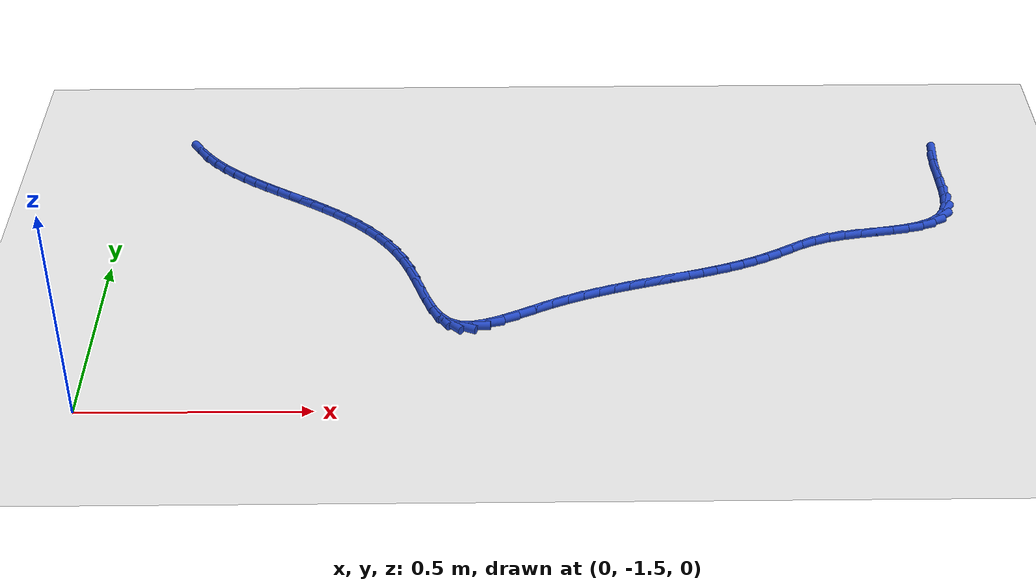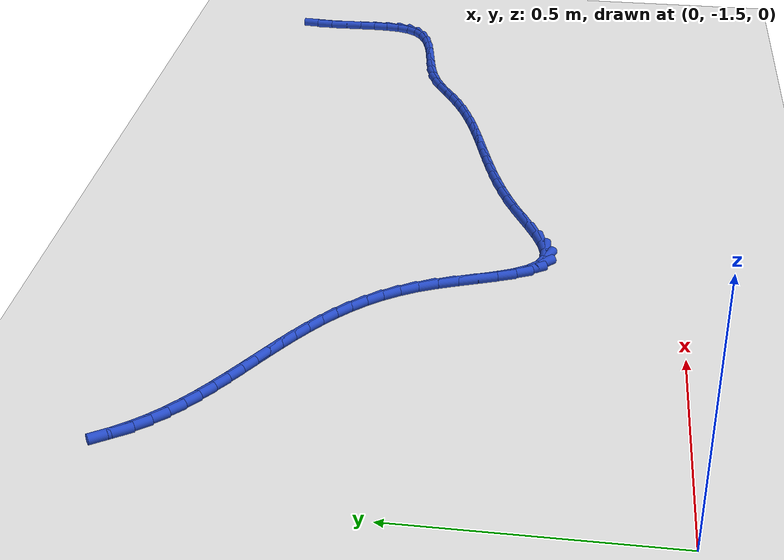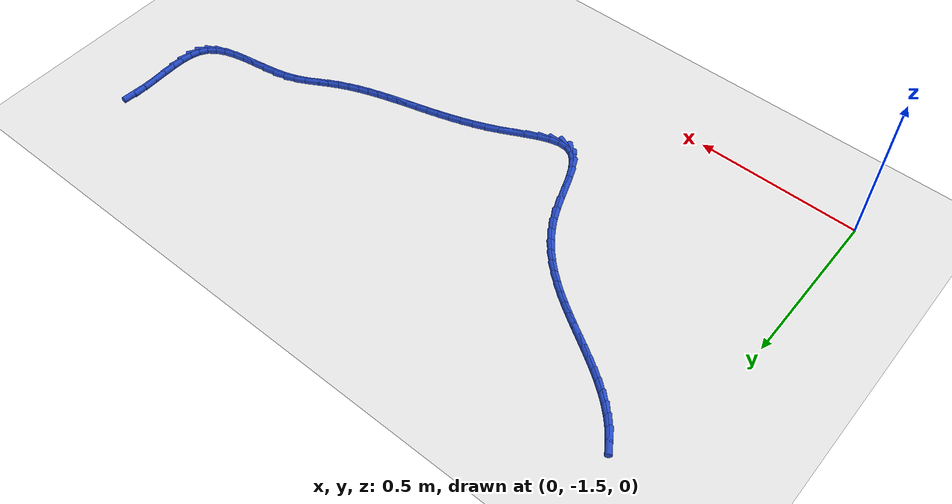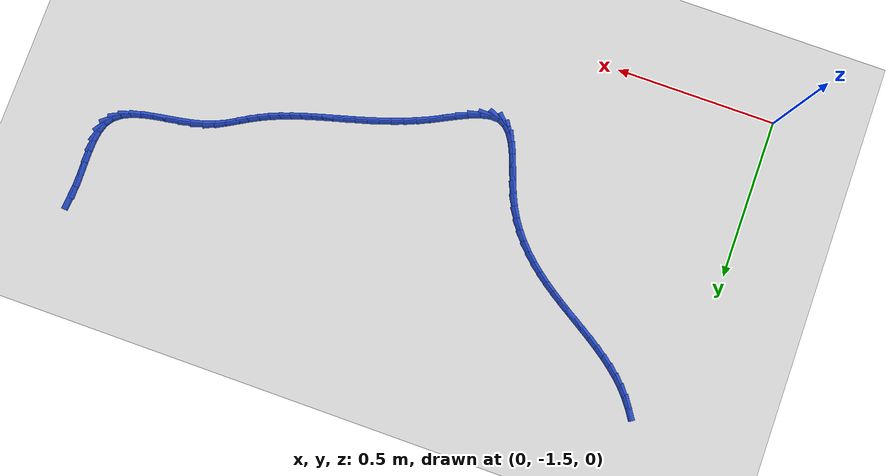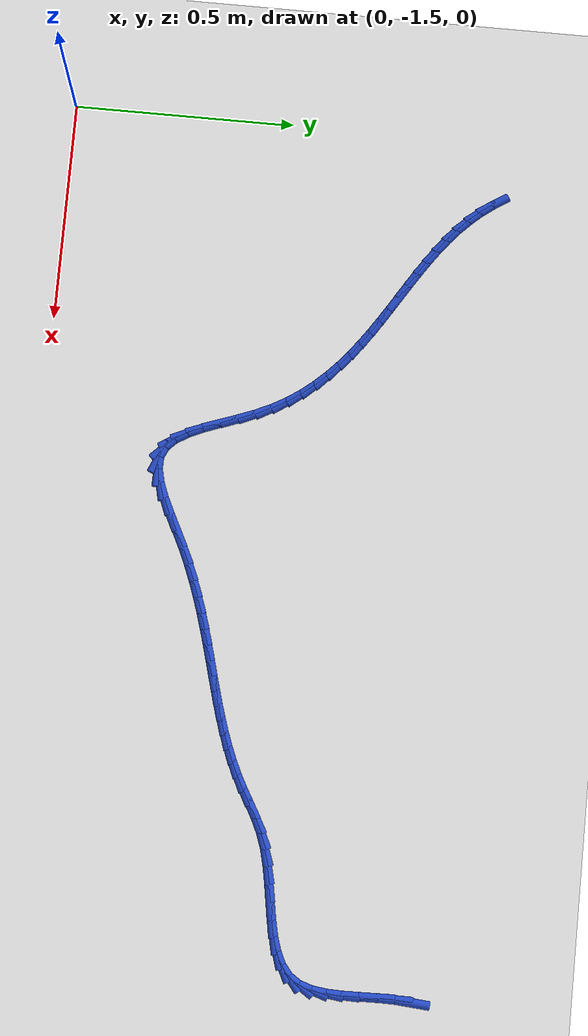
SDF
<sdf version="1.6">
 <world name="default">
  <model name="ground_plane">
   <static>1</static>
   <link name="link">
    <collision name="collision">
     <geometry><plane><normal>0 0 1</normal><size>100 100</size></plane></geometry>
     <surface><friction><ode><mu>100</mu><mu2>50</mu2></ode></friction></surface>
    </collision>
    <visual name="visual">
     <cast_shadows>0</cast_shadows>
     <geometry><plane><normal>0 0 1</normal><size>100 100</size></plane></geometry>
     <material>
      <script><uri>file://media/materials/scripts/gazebo.material</uri><name>Gazebo/WhiteGlow</name></script>
     </material>
    </visual>
   </link>
  </model>
  <model name="line">
   <link name="link_124">
    <pose>1.9450744201578125 -0.5635175784110071 0.01 0 1.57 1.4900538237686622</pose>
    <collision name="collision">
     <geometry><cylinder><radius>0.01</radius><length>0.08</length></cylinder></geometry>
    </collision>
    <visual name="visual">
     <material>
      <script><name>Gazebo/Blue</name><uri>file://media/materials/scripts/gazebo.material</uri></script>
     </material>
     <geometry><cylinder><radius>0.01</radius><length>0.08</length></cylinder></geometry>
    </visual>
   </link>
   <link name="link_125">
    <pose>1.9420322388551021 -0.6011132349380768 0.01 0 1.57 1.562138207736897</pose>
    <collision name="collision">
     <geometry><cylinder><radius>0.01</radius><length>0.08</length></cylinder></geometry>
    </collision>
    <visual name="visual">
     <material>
      <script><name>Gazebo/Blue</name><uri>file://media/materials/scripts/gazebo.material</uri></script>
     </material>
     <geometry><cylinder><radius>0.01</radius><length>0.08</length></cylinder></geometry>
    </visual>
   </link>
   <link name="link_126">
    <pose>1.9416978283134365 -0.6397361948721841 0.01 0 1.57 -1.5477387908876525</pose>
    <collision name="collision">
     <geometry><cylinder><radius>0.01</radius><length>0.08</length></cylinder></geometry>
    </collision>
    <visual name="visual">
     <material>
      <script><name>Gazebo/Blue</name><uri>file://media/materials/scripts/gazebo.material</uri></script>
     </material>
     <geometry><cylinder><radius>0.01</radius><length>0.08</length></cylinder></geometry>
    </visual>
   </link>
   <link name="link_127">
    <pose>1.9425884195632472 -0.6783540862287081 0.01 0 1.57 -1.5545018647337716</pose>
    <collision name="collision">
     <geometry><cylinder><radius>0.01</radius><length>0.08</length></cylinder></geometry>
    </collision>
    <visual name="visual">
     <material>
      <script><name>Gazebo/Blue</name><uri>file://media/materials/scripts/gazebo.material</uri></script>
     </material>
     <geometry><cylinder><radius>0.01</radius><length>0.08</length></cylinder></geometry>
    </visual>
   </link>
   <link name="link_128">
    <pose>1.9432006182296295 -0.7159217261794807 0.01 0 1.57 1.5378363034439433</pose>
    <collision name="collision">
     <geometry><cylinder><radius>0.01</radius><length>0.08</length></cylinder></geometry>
    </collision>
    <visual name="visual">
     <material>
      <script><name>Gazebo/Blue</name><uri>file://media/materials/scripts/gazebo.material</uri></script>
     </material>
     <geometry><cylinder><radius>0.01</radius><length>0.08</length></cylinder></geometry>
    </visual>
   </link>
   <link name="link_129">
    <pose>1.9420310299376788 -0.7513939318963346 0.01 0 1.57 1.4338746264321867</pose>
    <collision name="collision">
     <geometry><cylinder><radius>0.01</radius><length>0.08</length></cylinder></geometry>
    </collision>
    <visual name="visual">
     <material>
      <script><name>Gazebo/Blue</name><uri>file://media/materials/scripts/gazebo.material</uri></script>
     </material>
     <geometry><cylinder><radius>0.01</radius><length>0.08</length></cylinder></geometry>
    </visual>
   </link>
   <link name="link_130">
    <pose>1.937576260312489 -0.7837255205511019 0.01 0 1.57 1.2534837194187134</pose>
    <collision name="collision">
     <geometry><cylinder><radius>0.01</radius><length>0.08</length></cylinder></geometry>
    </collision>
    <visual name="visual">
     <material>
      <script><name>Gazebo/Blue</name><uri>file://media/materials/scripts/gazebo.material</uri></script>
     </material>
     <geometry><cylinder><radius>0.01</radius><length>0.08</length></cylinder></geometry>
    </visual>
   </link>
   <link name="link_131">
    <pose>1.9283329149791553 -0.8118713093156146 0.01 0 1.57 0.9763712850645911</pose>
    <collision name="collision">
     <geometry><cylinder><radius>0.01</radius><length>0.08</length></cylinder></geometry>
    </collision>
    <visual name="visual">
     <material>
      <script><name>Gazebo/Blue</name><uri>file://media/materials/scripts/gazebo.material</uri></script>
     </material>
     <geometry><cylinder><radius>0.01</radius><length>0.08</length></cylinder></geometry>
    </visual>
   </link>
   <link name="link_132">
    <pose>1.9128270848511497 -0.8348094863287364 0.01 0 1.57 0.6714239525671215</pose>
    <collision name="collision">
     <geometry><cylinder><radius>0.01</radius><length>0.08</length></cylinder></geometry>
    </collision>
    <visual name="visual">
     <material>
      <script><name>Gazebo/Blue</name><uri>file://media/materials/scripts/gazebo.material</uri></script>
     </material>
     <geometry><cylinder><radius>0.01</radius><length>0.08</length></cylinder></geometry>
    </visual>
   </link>
   <link name="link_133">
    <pose>1.8906930506308348 -0.8523966258141974 0.01 0 1.57 0.4450467345923789</pose>
    <collision name="collision">
     <geometry><cylinder><radius>0.01</radius><length>0.08</length></cylinder></geometry>
    </collision>
    <visual name="visual">
     <material>
      <script><name>Gazebo/Blue</name><uri>file://media/materials/scripts/gazebo.material</uri></script>
     </material>
     <geometry><cylinder><radius>0.01</radius><length>0.08</length></cylinder></geometry>
    </visual>
   </link>
   <link name="link_134">
    <pose>1.8629830366232472 -0.8656132086967365 0.01 0 1.57 0.29879262749139796</pose>
    <collision name="collision">
     <geometry><cylinder><radius>0.01</radius><length>0.08</length></cylinder></geometry>
    </collision>
    <visual name="visual">
     <material>
      <script><name>Gazebo/Blue</name><uri>file://media/materials/scripts/gazebo.material</uri></script>
     </material>
     <geometry><cylinder><radius>0.01</radius><length>0.08</length></cylinder></geometry>
    </visual>
   </link>
   <link name="link_135">
    <pose>1.8308418853967612 -0.8755131280499262 0.01 0 1.57 0.21232237910843807</pose>
    <collision name="collision">
     <geometry><cylinder><radius>0.01</radius><length>0.08</length></cylinder></geometry>
    </collision>
    <visual name="visual">
     <material>
      <script><name>Gazebo/Blue</name><uri>file://media/materials/scripts/gazebo.material</uri></script>
     </material>
     <geometry><cylinder><radius>0.01</radius><length>0.08</length></cylinder></geometry>
    </visual>
   </link>
   <link name="link_136">
    <pose>1.7954144395197489 -0.8831502769473395 0.01 0 1.57 0.16946509285185032</pose>
    <collision name="collision">
     <geometry><cylinder><radius>0.01</radius><length>0.08</length></cylinder></geometry>
    </collision>
    <visual name="visual">
     <material>
      <script><name>Gazebo/Blue</name><uri>file://media/materials/scripts/gazebo.material</uri></script>
     </material>
     <geometry><cylinder><radius>0.01</radius><length>0.08</length></cylinder></geometry>
    </visual>
   </link>
   <link name="link_137">
    <pose>1.7578455415605843 -0.8895785484625494 0.01 0 1.57 0.16125338630163524</pose>
    <collision name="collision">
     <geometry><cylinder><radius>0.01</radius><length>0.08</length></cylinder></geometry>
    </collision>
    <visual name="visual">
     <material>
      <script><name>Gazebo/Blue</name><uri>file://media/materials/scripts/gazebo.material</uri></script>
     </material>
     <geometry><cylinder><radius>0.01</radius><length>0.08</length></cylinder></geometry>
    </visual>
   </link>
   <link name="link_138">
    <pose>1.7192800340876389 -0.8958518356691282 0.01 0 1.57 0.18456723152424045</pose>
    <collision name="collision">
     <geometry><cylinder><radius>0.01</radius><length>0.08</length></cylinder></geometry>
    </collision>
    <visual name="visual">
     <material>
      <script><name>Gazebo/Blue</name><uri>file://media/materials/scripts/gazebo.material</uri></script>
     </material>
     <geometry><cylinder><radius>0.01</radius><length>0.08</length></cylinder></geometry>
    </visual>
   </link>
   <link name="link_139">
    <pose>1.6808627596692884 -0.9030240316406487 0.01 0 1.57 0.2410185236035959</pose>
    <collision name="collision">
     <geometry><cylinder><radius>0.01</radius><length>0.08</length></cylinder></geometry>
    </collision>
    <visual name="visual">
     <material>
      <script><name>Gazebo/Blue</name><uri>file://media/materials/scripts/gazebo.material</uri></script>
     </material>
     <geometry><cylinder><radius>0.01</radius><length>0.08</length></cylinder></geometry>
    </visual>
   </link>
   <link name="link_140">
    <pose>1.6437385608739046 -0.9121490294506833 0.01 0 1.57 0.3357910435748092</pose>
    <collision name="collision">
     <geometry><cylinder><radius>0.01</radius><length>0.08</length></cylinder></geometry>
    </collision>
    <visual name="visual">
     <material>
      <script><name>Gazebo/Blue</name><uri>file://media/materials/scripts/gazebo.material</uri></script>
     </material>
     <geometry><cylinder><radius>0.01</radius><length>0.08</length></cylinder></geometry>
    </visual>
   </link>
   <link name="link_141">
    <pose>1.6090357264541968 -0.9242606055916425 0.01 0 1.57 0.4417815182919602</pose>
    <collision name="collision">
     <geometry><cylinder><radius>0.01</radius><length>0.08</length></cylinder></geometry>
    </collision>
    <visual name="visual">
     <material>
      <script><name>Gazebo/Blue</name><uri>file://media/materials/scripts/gazebo.material</uri></script>
     </material>
     <geometry><cylinder><radius>0.01</radius><length>0.08</length></cylinder></geometry>
    </visual>
   </link>
   <link name="link_142">
    <pose>1.5770545762250185 -0.9393863694778103 0.01 0 1.57 0.506099280674356</pose>
    <collision name="collision">
     <geometry><cylinder><radius>0.01</radius><length>0.08</length></cylinder></geometry>
    </collision>
    <visual name="visual">
     <material>
      <script><name>Gazebo/Blue</name><uri>file://media/materials/scripts/gazebo.material</uri></script>
     </material>
     <geometry><cylinder><radius>0.01</radius><length>0.08</length></cylinder></geometry>
    </visual>
   </link>
   <link name="link_143">
    <pose>1.546899031659647 -0.9561000394792754 0.01 0 1.57 0.5193484073271175</pose>
    <collision name="collision">
     <geometry><cylinder><radius>0.01</radius><length>0.08</length></cylinder></geometry>
    </collision>
    <visual name="visual">
     <material>
      <script><name>Gazebo/Blue</name><uri>file://media/materials/scripts/gazebo.material</uri></script>
     </material>
     <geometry><cylinder><radius>0.01</radius><length>0.08</length></cylinder></geometry>
    </visual>
   </link>
   <link name="link_144">
    <pose>1.5175796304008935 -0.9728618517670402 0.01 0 1.57 0.4827630625281404</pose>
    <collision name="collision">
     <geometry><cylinder><radius>0.01</radius><length>0.08</length></cylinder></geometry>
    </collision>
    <visual name="visual">
     <material>
      <script><name>Gazebo/Blue</name><uri>file://media/materials/scripts/gazebo.material</uri></script>
     </material>
     <geometry><cylinder><radius>0.01</radius><length>0.08</length></cylinder></geometry>
    </visual>
   </link>
   <link name="link_145">
    <pose>1.4881827719432643 -0.9882695643776906 0.01 0 1.57 0.43279839145233656</pose>
    <collision name="collision">
     <geometry><cylinder><radius>0.01</radius><length>0.08</length></cylinder></geometry>
    </collision>
    <visual name="visual">
     <material>
      <script><name>Gazebo/Blue</name><uri>file://media/materials/scripts/gazebo.material</uri></script>
     </material>
     <geometry><cylinder><radius>0.01</radius><length>0.08</length></cylinder></geometry>
    </visual>
   </link>
   <link name="link_146">
    <pose>1.4584051154487485 -1.0020272100575338 0.01 0 1.57 0.3884227514064635</pose>
    <collision name="collision">
     <geometry><cylinder><radius>0.01</radius><length>0.08</length></cylinder></geometry>
    </collision>
    <visual name="visual">
     <material>
      <script><name>Gazebo/Blue</name><uri>file://media/materials/scripts/gazebo.material</uri></script>
     </material>
     <geometry><cylinder><radius>0.01</radius><length>0.08</length></cylinder></geometry>
    </visual>
   </link>
   <link name="link_147">
    <pose>1.4282375279628574 -1.014372159668249 0.01 0 1.57 0.35046327567277</pose>
    <collision name="collision">
     <geometry><cylinder><radius>0.01</radius><length>0.08</length></cylinder></geometry>
    </collision>
    <visual name="visual">
     <material>
      <script><name>Gazebo/Blue</name><uri>file://media/materials/scripts/gazebo.material</uri></script>
     </material>
     <geometry><cylinder><radius>0.01</radius><length>0.08</length></cylinder></geometry>
    </visual>
   </link>
   <link name="link_148">
    <pose>1.3976727700437337 -1.0255452166187529 0.01 0 1.57 0.3193921880081989</pose>
    <collision name="collision">
     <geometry><cylinder><radius>0.01</radius><length>0.08</length></cylinder></geometry>
    </collision>
    <visual name="visual">
     <material>
      <script><name>Gazebo/Blue</name><uri>file://media/materials/scripts/gazebo.material</uri></script>
     </material>
     <geometry><cylinder><radius>0.01</radius><length>0.08</length></cylinder></geometry>
    </visual>
   </link>
   <link name="link_149">
    <pose>1.366703602249519 -1.0357871843179614 0.01 0 1.57 0.29546995498555667</pose>
    <collision name="collision">
     <geometry><cylinder><radius>0.01</radius><length>0.08</length></cylinder></geometry>
    </collision>
    <visual name="visual">
     <material>
      <script><name>Gazebo/Blue</name><uri>file://media/materials/scripts/gazebo.material</uri></script>
     </material>
     <geometry><cylinder><radius>0.01</radius><length>0.08</length></cylinder></geometry>
    </visual>
   </link>
   <link name="link_150">
    <pose>1.3353227851383551 -1.0453388661747909 0.01 0 1.57 0.2787813163456922</pose>
    <collision name="collision">
     <geometry><cylinder><radius>0.01</radius><length>0.08</length></cylinder></geometry>
    </collision>
    <visual name="visual">
     <material>
      <script><name>Gazebo/Blue</name><uri>file://media/materials/scripts/gazebo.material</uri></script>
     </material>
     <geometry><cylinder><radius>0.01</radius><length>0.08</length></cylinder></geometry>
    </visual>
   </link>
   <link name="link_151">
    <pose>1.3035230792683838 -1.0544410655981582 0.01 0 1.57 0.26927231457947076</pose>
    <collision name="collision">
     <geometry><cylinder><radius>0.01</radius><length>0.08</length></cylinder></geometry>
    </collision>
    <visual name="visual">
     <material>
      <script><name>Gazebo/Blue</name><uri>file://media/materials/scripts/gazebo.material</uri></script>
     </material>
     <geometry><cylinder><radius>0.01</radius><length>0.08</length></cylinder></geometry>
    </visual>
   </link>
   <link name="link_152">
    <pose>1.2712972451977487 -1.0633345859969794 0.01 0 1.57 0.2667817707652976</pose>
    <collision name="collision">
     <geometry><cylinder><radius>0.01</radius><length>0.08</length></cylinder></geometry>
    </collision>
    <visual name="visual">
     <material>
      <script><name>Gazebo/Blue</name><uri>file://media/materials/scripts/gazebo.material</uri></script>
     </material>
     <geometry><cylinder><radius>0.01</radius><length>0.08</length></cylinder></geometry>
    </visual>
   </link>
   <link name="link_153">
    <pose>1.2386380434845912 -1.0722602307801705 0.01 0 1.57 0.2710641199381708</pose>
    <collision name="collision">
     <geometry><cylinder><radius>0.01</radius><length>0.08</length></cylinder></geometry>
    </collision>
    <visual name="visual">
     <material>
      <script><name>Gazebo/Blue</name><uri>file://media/materials/scripts/gazebo.material</uri></script>
     </material>
     <geometry><cylinder><radius>0.01</radius><length>0.08</length></cylinder></geometry>
    </visual>
   </link>
   <link name="link_154">
    <pose>1.205538234687053 -1.0814588033566477 0.01 0 1.57 0.2818032320517829</pose>
    <collision name="collision">
     <geometry><cylinder><radius>0.01</radius><length>0.08</length></cylinder></geometry>
    </collision>
    <visual name="visual">
     <material>
      <script><name>Gazebo/Blue</name><uri>file://media/materials/scripts/gazebo.material</uri></script>
     </material>
     <geometry><cylinder><radius>0.01</radius><length>0.08</length></cylinder></geometry>
    </visual>
   </link>
   <link name="link_155">
    <pose>1.1719905793632766 -1.0911711071353283 0.01 0 1.57 0.2986186537221747</pose>
    <collision name="collision">
     <geometry><cylinder><radius>0.01</radius><length>0.08</length></cylinder></geometry>
    </collision>
    <visual name="visual">
     <material>
      <script><name>Gazebo/Blue</name><uri>file://media/materials/scripts/gazebo.material</uri></script>
     </material>
     <geometry><cylinder><radius>0.01</radius><length>0.08</length></cylinder></geometry>
    </visual>
   </link>
   <link name="link_156">
    <pose>1.137987838071404 -1.1016379455251273 0.01 0 1.57 0.32106677193124583</pose>
    <collision name="collision">
     <geometry><cylinder><radius>0.01</radius><length>0.08</length></cylinder></geometry>
    </collision>
    <visual name="visual">
     <material>
      <script><name>Gazebo/Blue</name><uri>file://media/materials/scripts/gazebo.material</uri></script>
     </material>
     <geometry><cylinder><radius>0.01</radius><length>0.08</length></cylinder></geometry>
    </visual>
   </link>
   <link name="link_157">
    <pose>1.1035227713695759 -1.1131001219349623 0.01 0 1.57 0.3486399225288616</pose>
    <collision name="collision">
     <geometry><cylinder><radius>0.01</radius><length>0.08</length></cylinder></geometry>
    </collision>
    <visual name="visual">
     <material>
      <script><name>Gazebo/Blue</name><uri>file://media/materials/scripts/gazebo.material</uri></script>
     </material>
     <geometry><cylinder><radius>0.01</radius><length>0.08</length></cylinder></geometry>
    </visual>
   </link>
   <link name="link_158">
    <pose>1.0685881398159371 -1.1257984397737488 0.01 0 1.57 0.3807665508363996</pose>
    <collision name="collision">
     <geometry><cylinder><radius>0.01</radius><length>0.08</length></cylinder></geometry>
    </collision>
    <visual name="visual">
     <material>
      <script><name>Gazebo/Blue</name><uri>file://media/materials/scripts/gazebo.material</uri></script>
     </material>
     <geometry><cylinder><radius>0.01</radius><length>0.08</length></cylinder></geometry>
    </visual>
   </link>
   <link name="link_159">
    <pose>1.0331767039686282 -1.1399737024504033 0.01 0 1.57 0.41681518454797184</pose>
    <collision name="collision">
     <geometry><cylinder><radius>0.01</radius><length>0.08</length></cylinder></geometry>
    </collision>
    <visual name="visual">
     <material>
      <script><name>Gazebo/Blue</name><uri>file://media/materials/scripts/gazebo.material</uri></script>
     </material>
     <geometry><cylinder><radius>0.01</radius><length>0.08</length></cylinder></geometry>
    </visual>
   </link>
   <link name="link_160">
    <pose>0.9972812243857911 -1.1558667133738418 0.01 0 1.57 0.45388059997195684</pose>
    <collision name="collision">
     <geometry><cylinder><radius>0.01</radius><length>0.08</length></cylinder></geometry>
    </collision>
    <visual name="visual">
     <material>
      <script><name>Gazebo/Blue</name><uri>file://media/materials/scripts/gazebo.material</uri></script>
     </material>
     <geometry><cylinder><radius>0.01</radius><length>0.08</length></cylinder></geometry>
    </visual>
   </link>
   <link name="link_161">
    <pose>0.960937699915362 -1.173596908548131 0.01 0 1.57 0.46758363251699797</pose>
    <collision name="collision">
     <geometry><cylinder><radius>0.01</radius><length>0.08</length></cylinder></geometry>
    </collision>
    <visual name="visual">
     <material>
      <script><name>Gazebo/Blue</name><uri>file://media/materials/scripts/gazebo.material</uri></script>
     </material>
     <geometry><cylinder><radius>0.01</radius><length>0.08</length></cylinder></geometry>
    </visual>
   </link>
   <link name="link_162">
    <pose>0.9246720632803241 -1.191908507629819 0.01 0 1.57 0.4428619446929743</pose>
    <collision name="collision">
     <geometry><cylinder><radius>0.01</radius><length>0.08</length></cylinder></geometry>
    </collision>
    <visual name="visual">
     <material>
      <script><name>Gazebo/Blue</name><uri>file://media/materials/scripts/gazebo.material</uri></script>
     </material>
     <geometry><cylinder><radius>0.01</radius><length>0.08</length></cylinder></geometry>
    </visual>
   </link>
   <link name="link_163">
    <pose>0.8893204006338391 -1.2086751473475472 0.01 0 1.57 0.37130894960301736</pose>
    <collision name="collision">
     <geometry><cylinder><radius>0.01</radius><length>0.08</length></cylinder></geometry>
    </collision>
    <visual name="visual">
     <material>
      <script><name>Gazebo/Blue</name><uri>file://media/materials/scripts/gazebo.material</uri></script>
     </material>
     <geometry><cylinder><radius>0.01</radius><length>0.08</length></cylinder></geometry>
    </visual>
   </link>
   <link name="link_164">
    <pose>0.8557237072198565 -1.2217566848930697 0.01 0 1.57 0.22992897975379628</pose>
    <collision name="collision">
     <geometry><cylinder><radius>0.01</radius><length>0.08</length></cylinder></geometry>
    </collision>
    <visual name="visual">
     <material>
      <script><name>Gazebo/Blue</name><uri>file://media/materials/scripts/gazebo.material</uri></script>
     </material>
     <geometry><cylinder><radius>0.01</radius><length>0.08</length></cylinder></geometry>
    </visual>
   </link>
   <link name="link_165">
    <pose>0.8247229782823277 -1.2290129774581404 0.01 0 1.57 -0.025719953315053033</pose>
    <collision name="collision">
     <geometry><cylinder><radius>0.01</radius><length>0.08</length></cylinder></geometry>
    </collision>
    <visual name="visual">
     <material>
      <script><name>Gazebo/Blue</name><uri>file://media/materials/scripts/gazebo.material</uri></script>
     </material>
     <geometry><cylinder><radius>0.01</radius><length>0.08</length></cylinder></geometry>
    </visual>
   </link>
   <link name="link_166">
    <pose>0.7971592090652018 -1.2283038822345147 0.01 0 1.57 -0.4234726416332163</pose>
    <collision name="collision">
     <geometry><cylinder><radius>0.01</radius><length>0.08</length></cylinder></geometry>
    </collision>
    <visual name="visual">
     <material>
      <script><name>Gazebo/Blue</name><uri>file://media/materials/scripts/gazebo.material</uri></script>
     </material>
     <geometry><cylinder><radius>0.01</radius><length>0.08</length></cylinder></geometry>
    </visual>
   </link>
   <link name="link_167">
    <pose>0.7737554485506083 -1.2177547726273974 0.01 0 1.57 -0.7913232337300508</pose>
    <collision name="collision">
     <geometry><cylinder><radius>0.01</radius><length>0.08</length></cylinder></geometry>
    </collision>
    <visual name="visual">
     <material>
      <script><name>Gazebo/Blue</name><uri>file://media/materials/scripts/gazebo.material</uri></script>
     </material>
     <geometry><cylinder><radius>0.01</radius><length>0.08</length></cylinder></geometry>
    </visual>
   </link>
   <link name="link_168">
    <pose>0.7541553176074869 -1.197920990240072 0.01 0 1.57 -1.0202932622778529</pose>
    <collision name="collision">
     <geometry><cylinder><radius>0.01</radius><length>0.08</length></cylinder></geometry>
    </collision>
    <visual name="visual">
     <material>
      <script><name>Gazebo/Blue</name><uri>file://media/materials/scripts/gazebo.material</uri></script>
     </material>
     <geometry><cylinder><radius>0.01</radius><length>0.08</length></cylinder></geometry>
    </visual>
   </link>
   <link name="link_169">
    <pose>0.7374234153373167 -1.1706613488234654 0.01 0 1.57 -1.1469751115923075</pose>
    <collision name="collision">
     <geometry><cylinder><radius>0.01</radius><length>0.08</length></cylinder></geometry>
    </collision>
    <visual name="visual">
     <material>
      <script><name>Gazebo/Blue</name><uri>file://media/materials/scripts/gazebo.material</uri></script>
     </material>
     <geometry><cylinder><radius>0.01</radius><length>0.08</length></cylinder></geometry>
    </visual>
   </link>
   <link name="link_170">
    <pose>0.7226188170389527 -1.1378470971063797 0.01 0 1.57 -1.2088678984107686</pose>
    <collision name="collision">
     <geometry><cylinder><radius>0.01</radius><length>0.08</length></cylinder></geometry>
    </collision>
    <visual name="visual">
     <material>
      <script><name>Gazebo/Blue</name><uri>file://media/materials/scripts/gazebo.material</uri></script>
     </material>
     <geometry><cylinder><radius>0.01</radius><length>0.08</length></cylinder></geometry>
    </visual>
   </link>
   <link name="link_171">
    <pose>0.708800598011251 -1.101349483817621 0.01 0 1.57 -1.225673791005978</pose>
    <collision name="collision">
     <geometry><cylinder><radius>0.01</radius><length>0.08</length></cylinder></geometry>
    </collision>
    <visual name="visual">
     <material>
      <script><name>Gazebo/Blue</name><uri>file://media/materials/scripts/gazebo.material</uri></script>
     </material>
     <geometry><cylinder><radius>0.01</radius><length>0.08</length></cylinder></geometry>
    </visual>
   </link>
   <link name="link_172">
    <pose>0.6950278335530656 -1.0630397576859922 0.01 0 1.57 -1.2046142604490204</pose>
    <collision name="collision">
     <geometry><cylinder><radius>0.01</radius><length>0.08</length></cylinder></geometry>
    </collision>
    <visual name="visual">
     <material>
      <script><name>Gazebo/Blue</name><uri>file://media/materials/scripts/gazebo.material</uri></script>
     </material>
     <geometry><cylinder><radius>0.01</radius><length>0.08</length></cylinder></geometry>
    </visual>
   </link>
   <link name="link_173">
    <pose>0.6803595989632527 -1.0247891674402982 0.01 0 1.57 -1.1448669597737318</pose>
    <collision name="collision">
     <geometry><cylinder><radius>0.01</radius><length>0.08</length></cylinder></geometry>
    </collision>
    <visual name="visual">
     <material>
      <script><name>Gazebo/Blue</name><uri>file://media/materials/scripts/gazebo.material</uri></script>
     </material>
     <geometry><cylinder><radius>0.01</radius><length>0.08</length></cylinder></geometry>
    </visual>
   </link>
   <link name="link_174">
    <pose>0.6638691920717276 -0.9884429365286428 0.01 0 1.57 -1.0607614002618755</pose>
    <collision name="collision">
     <geometry><cylinder><radius>0.01</radius><length>0.08</length></cylinder></geometry>
    </collision>
    <visual name="visual">
     <material>
      <script><name>Gazebo/Blue</name><uri>file://media/materials/scripts/gazebo.material</uri></script>
     </material>
     <geometry><cylinder><radius>0.01</radius><length>0.08</length></cylinder></geometry>
    </visual>
   </link>
   <link name="link_175">
    <pose>0.6451263283359059 -0.9549379122426528 0.01 0 1.57 -0.977323130410545</pose>
    <collision name="collision">
     <geometry><cylinder><radius>0.01</radius><length>0.08</length></cylinder></geometry>
    </collision>
    <visual name="visual">
     <material>
      <script><name>Gazebo/Blue</name><uri>file://media/materials/scripts/gazebo.material</uri></script>
     </material>
     <geometry><cylinder><radius>0.01</radius><length>0.08</length></cylinder></geometry>
    </visual>
   </link>
   <link name="link_176">
    <pose>0.6243146903426965 -0.9240874662550471 0.01 0 1.57 -0.8982678999646019</pose>
    <collision name="collision">
     <geometry><cylinder><radius>0.01</radius><length>0.08</length></cylinder></geometry>
    </collision>
    <visual name="visual">
     <material>
      <script><name>Gazebo/Blue</name><uri>file://media/materials/scripts/gazebo.material</uri></script>
     </material>
     <geometry><cylinder><radius>0.01</radius><length>0.08</length></cylinder></geometry>
    </visual>
   </link>
   <link name="link_177">
    <pose>0.6016560264797142 -0.8956353150453751 0.01 0 1.57 -0.8254249087139873</pose>
    <collision name="collision">
     <geometry><cylinder><radius>0.01</radius><length>0.08</length></cylinder></geometry>
    </collision>
    <visual name="visual">
     <material>
      <script><name>Gazebo/Blue</name><uri>file://media/materials/scripts/gazebo.material</uri></script>
     </material>
     <geometry><cylinder><radius>0.01</radius><length>0.08</length></cylinder></geometry>
    </visual>
   </link>
   <link name="link_178">
    <pose>0.577372085134572 -0.8693251750931837 0.01 0 1.57 -0.7601987337563526</pose>
    <collision name="collision">
     <geometry><cylinder><radius>0.01</radius><length>0.08</length></cylinder></geometry>
    </collision>
    <visual name="visual">
     <material>
      <script><name>Gazebo/Blue</name><uri>file://media/materials/scripts/gazebo.material</uri></script>
     </material>
     <geometry><cylinder><radius>0.01</radius><length>0.08</length></cylinder></geometry>
    </visual>
   </link>
   <link name="link_179">
    <pose>0.5516846146948841 -0.8449007628780207 0.01 0 1.57 -0.703544870003094</pose>
    <collision name="collision">
     <geometry><cylinder><radius>0.01</radius><length>0.08</length></cylinder></geometry>
    </collision>
    <visual name="visual">
     <material>
      <script><name>Gazebo/Blue</name><uri>file://media/materials/scripts/gazebo.material</uri></script>
     </material>
     <geometry><cylinder><radius>0.01</radius><length>0.08</length></cylinder></geometry>
    </visual>
   </link>
   <link name="link_180">
    <pose>0.524815363548264 -0.8221057948794339 0.01 0 1.57 -0.6560266343608973</pose>
    <collision name="collision">
     <geometry><cylinder><radius>0.01</radius><length>0.08</length></cylinder></geometry>
    </collision>
    <visual name="visual">
     <material>
      <script><name>Gazebo/Blue</name><uri>file://media/materials/scripts/gazebo.material</uri></script>
     </material>
     <geometry><cylinder><radius>0.01</radius><length>0.08</length></cylinder></geometry>
    </visual>
   </link>
   <link name="link_181">
    <pose>0.49698608008232537 -0.8006839875769711 0.01 0 1.57 -0.6179167152656028</pose>
    <collision name="collision">
     <geometry><cylinder><radius>0.01</radius><length>0.08</length></cylinder></geometry>
    </collision>
    <visual name="visual">
     <material>
      <script><name>Gazebo/Blue</name><uri>file://media/materials/scripts/gazebo.material</uri></script>
     </material>
     <geometry><cylinder><radius>0.01</radius><length>0.08</length></cylinder></geometry>
    </visual>
   </link>
   <link name="link_182">
    <pose>0.46841851268468215 -0.78037905745018 0.01 0 1.57 -0.5893091054882157</pose>
    <collision name="collision">
     <geometry><cylinder><radius>0.01</radius><length>0.08</length></cylinder></geometry>
    </collision>
    <visual name="visual">
     <material>
      <script><name>Gazebo/Blue</name><uri>file://media/materials/scripts/gazebo.material</uri></script>
     </material>
     <geometry><cylinder><radius>0.01</radius><length>0.08</length></cylinder></geometry>
    </visual>
   </link>
   <link name="link_183">
    <pose>0.4393344097429475 -0.7609347209786083 0.01 0 1.57 -0.5702190749803788</pose>
    <collision name="collision">
     <geometry><cylinder><radius>0.01</radius><length>0.08</length></cylinder></geometry>
    </collision>
    <visual name="visual">
     <material>
      <script><name>Gazebo/Blue</name><uri>file://media/materials/scripts/gazebo.material</uri></script>
     </material>
     <geometry><cylinder><radius>0.01</radius><length>0.08</length></cylinder></geometry>
    </visual>
   </link>
   <link name="link_184">
    <pose>0.4099555196447364 -0.7420946946418041 0.01 0 1.57 -0.5606608915099892</pose>
    <collision name="collision">
     <geometry><cylinder><radius>0.01</radius><length>0.08</length></cylinder></geometry>
    </collision>
    <visual name="visual">
     <material>
      <script><name>Gazebo/Blue</name><uri>file://media/materials/scripts/gazebo.material</uri></script>
     </material>
     <geometry><cylinder><radius>0.01</radius><length>0.08</length></cylinder></geometry>
    </visual>
   </link>
   <link name="link_185">
    <pose>0.38050359077766205 -0.7236026949193154 0.01 0 1.57 -0.5607007214761911</pose>
    <collision name="collision">
     <geometry><cylinder><radius>0.01</radius><length>0.08</length></cylinder></geometry>
    </collision>
    <visual name="visual">
     <material>
      <script><name>Gazebo/Blue</name><uri>file://media/materials/scripts/gazebo.material</uri></script>
     </material>
     <geometry><cylinder><radius>0.01</radius><length>0.08</length></cylinder></geometry>
    </visual>
   </link>
   <link name="link_186">
    <pose>0.35120037152933803 -0.7052024382906894 0.01 0 1.57 -0.5704850822982878</pose>
    <collision name="collision">
     <geometry><cylinder><radius>0.01</radius><length>0.08</length></cylinder></geometry>
    </collision>
    <visual name="visual">
     <material>
      <script><name>Gazebo/Blue</name><uri>file://media/materials/scripts/gazebo.material</uri></script>
     </material>
     <geometry><cylinder><radius>0.01</radius><length>0.08</length></cylinder></geometry>
    </visual>
   </link>
   <link name="link_187">
    <pose>0.3222676102873785 -0.6866376412354744 0.01 0 1.57 -0.5902446259251586</pose>
    <collision name="collision">
     <geometry><cylinder><radius>0.01</radius><length>0.08</length></cylinder></geometry>
    </collision>
    <visual name="visual">
     <material>
      <script><name>Gazebo/Blue</name><uri>file://media/materials/scripts/gazebo.material</uri></script>
     </material>
     <geometry><cylinder><radius>0.01</radius><length>0.08</length></cylinder></geometry>
    </visual>
   </link>
   <link name="link_188">
    <pose>0.29392705543939696 -0.6676520202332179 0.01 0 1.57 -0.6202704446068633</pose>
    <collision name="collision">
     <geometry><cylinder><radius>0.01</radius><length>0.08</length></cylinder></geometry>
    </collision>
    <visual name="visual">
     <material>
      <script><name>Gazebo/Blue</name><uri>file://media/materials/scripts/gazebo.material</uri></script>
     </material>
     <geometry><cylinder><radius>0.01</radius><length>0.08</length></cylinder></geometry>
    </visual>
   </link>
   <link name="link_189">
    <pose>0.26640045537300666 -0.6479892917634673 0.01 0 1.57 -0.6608570610298723</pose>
    <collision name="collision">
     <geometry><cylinder><radius>0.01</radius><length>0.08</length></cylinder></geometry>
    </collision>
    <visual name="visual">
     <material>
      <script><name>Gazebo/Blue</name><uri>file://media/materials/scripts/gazebo.material</uri></script>
     </material>
     <geometry><cylinder><radius>0.01</radius><length>0.08</length></cylinder></geometry>
    </visual>
   </link>
   <link name="link_190">
    <pose>0.23990955847582246 -0.6273931723057713 0.01 0 1.57 -0.7122048796730807</pose>
    <collision name="collision">
     <geometry><cylinder><radius>0.01</radius><length>0.08</length></cylinder></geometry>
    </collision>
    <visual name="visual">
     <material>
      <script><name>Gazebo/Blue</name><uri>file://media/materials/scripts/gazebo.material</uri></script>
     </material>
     <geometry><cylinder><radius>0.01</radius><length>0.08</length></cylinder></geometry>
    </visual>
   </link>
   <link name="link_191">
    <pose>0.2146761131354577 -0.6056073783396774 0.01 0 1.57 -0.7742784278454894</pose>
    <collision name="collision">
     <geometry><cylinder><radius>0.01</radius><length>0.08</length></cylinder></geometry>
    </collision>
    <visual name="visual">
     <material>
      <script><name>Gazebo/Blue</name><uri>file://media/materials/scripts/gazebo.material</uri></script>
     </material>
     <geometry><cylinder><radius>0.01</radius><length>0.08</length></cylinder></geometry>
    </visual>
   </link>
   <link name="link_192">
    <pose>0.19092186773952616 -0.5823756263447333 0.01 0 1.57 -0.8465958834148585</pose>
    <collision name="collision">
     <geometry><cylinder><radius>0.01</radius><length>0.08</length></cylinder></geometry>
    </collision>
    <visual name="visual">
     <material>
      <script><name>Gazebo/Blue</name><uri>file://media/materials/scripts/gazebo.material</uri></script>
     </material>
     <geometry><cylinder><radius>0.01</radius><length>0.08</length></cylinder></geometry>
    </visual>
   </link>
   <link name="link_193">
    <pose>0.16886788037594447 -0.5574425422105583 0.01 0 1.57 -0.9232041818073234</pose>
    <collision name="collision">
     <geometry><cylinder><radius>0.01</radius><length>0.08</length></cylinder></geometry>
    </collision>
    <visual name="visual">
     <material>
      <script><name>Gazebo/Blue</name><uri>file://media/materials/scripts/gazebo.material</uri></script>
     </material>
     <geometry><cylinder><radius>0.01</radius><length>0.08</length></cylinder></geometry>
    </visual>
   </link>
   <link name="link_194">
    <pose>0.1486314841749756 -0.5306894004760928 0.01 0 1.57 -0.9932402600903132</pose>
    <collision name="collision">
     <geometry><cylinder><radius>0.01</radius><length>0.08</length></cylinder></geometry>
    </collision>
    <visual name="visual">
     <material>
      <script><name>Gazebo/Blue</name><uri>file://media/materials/scripts/gazebo.material</uri></script>
     </material>
     <geometry><cylinder><radius>0.01</radius><length>0.08</length></cylinder></geometry>
    </visual>
   </link>
  </model>
 </world>
</sdf>
